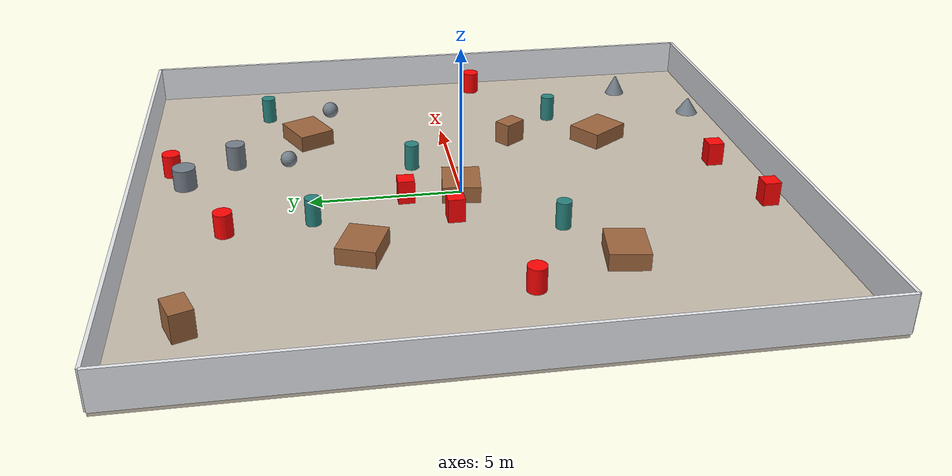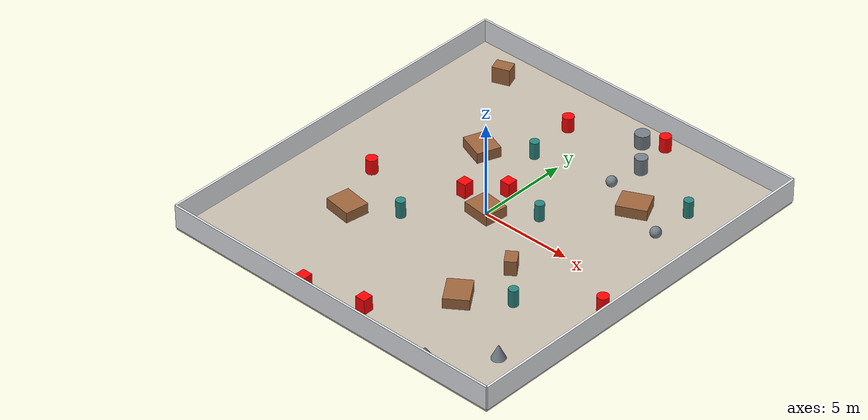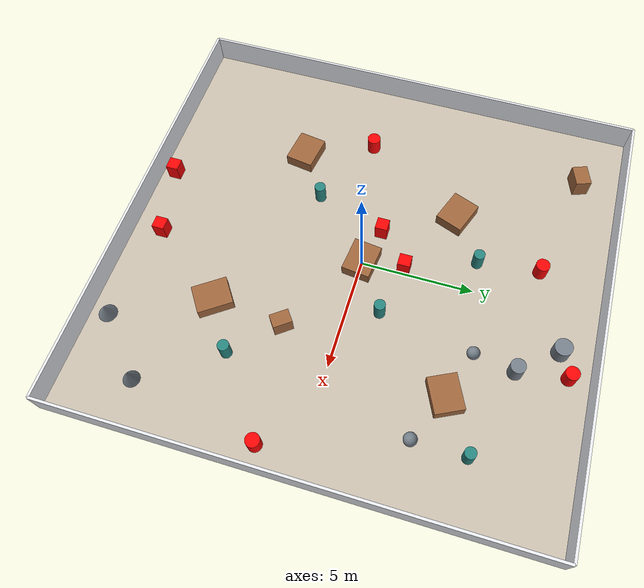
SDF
<?xml version='1.0' encoding='utf-8'?>
<sdf version="1.7">
  <world name="flat_3">
    <gravity>0 0 -9.8</gravity>
    <plugin name="gazebo_ros_state" filename="libgazebo_ros_state.so">
      <ros>
        <namespace>/gazebo</namespace>
      </ros>
    </plugin>
    <physics name="ode_physics" type="ode">
      <max_step_size>0.001</max_step_size>
      <real_time_factor>1</real_time_factor>
      <real_time_update_rate>1000</real_time_update_rate>
      <ode>
        <solver>
          <type>quick</type>
          <iters>150</iters>
          <sor>1.3</sor>
        </solver>
        <constraints>
          <cfm>0</cfm>
          <erp>0.2</erp>
          <contact_max_correcting_vel>0.2</contact_max_correcting_vel>
          <contact_surface_layer>0.001</contact_surface_layer>
        </constraints>
      </ode>
    </physics>
    <light name="sun" type="directional">
      <pose>0 0 28 0 0 0</pose>
      <diffuse>0.92 0.91 0.88 1</diffuse>
      <specular>0.18 0.18 0.16 1</specular>
      <direction>-0.35 -0.28 -0.9</direction>
      <cast_shadows>true</cast_shadows>
    </light>
    <light name="fill" type="point">
      <pose>0 0 6 0 0 0</pose>
      <diffuse>0.35 0.36 0.34 1</diffuse>
      <specular>0.02 0.02 0.02 1</specular>
      <cast_shadows>false</cast_shadows>
      <attenuation>
        <range>80</range>
        <constant>0.5</constant>
        <linear>0.02</linear>
      </attenuation>
    </light>
    <scene>
      <ambient>0.50 0.49 0.47 1</ambient>
      <background>0.80 0.82 0.86 1</background>
    </scene>
    <gui fullscreen="false">
      <camera name="user_camera">
        <pose>13.72 -18.9 17.85 0 0.65 2.2</pose>
        <view_controller>orbit</view_controller>
      </camera>
    </gui>
    <model name="flat_3_structure">
      <static>true</static>
      <link name="structure">
        <collision name="floor_collision">
          <pose>0 0 -0.07 0 0 0</pose>
          <geometry>
            <box>
              <size>19.6 21 0.14</size>
            </box>
          </geometry>
          <max_contacts>40</max_contacts>
          <surface>
            <friction>
              <ode>
                <mu>2</mu>
                <mu2>2</mu2>
              </ode>
            </friction>
            <contact>
              <ode>
                <kp>1e7</kp>
                <kd>1000</kd>
                <max_vel>0.1</max_vel>
                <min_depth>0.001</min_depth>
              </ode>
            </contact>
          </surface>
        </collision>
        <visual name="floor_visual">
          <pose>0 0 -0.07 0 0 0</pose>
          <geometry>
            <box>
              <size>19.6 21 0.14</size>
            </box>
          </geometry>
          <material>
            <ambient>0.78 0.74 0.68 1</ambient>
            <diffuse>0.78 0.74 0.68 1</diffuse>
          </material>
        </visual>
        <collision name="island_0_collision">
          <pose>-4.9 -4.2 0.28 0 0 -0.149702639</pose>
          <geometry>
            <box>
              <size>1.54 1.26 0.56</size>
            </box>
          </geometry>
          <max_contacts>40</max_contacts>
          <surface>
            <friction>
              <ode>
                <mu>2</mu>
                <mu2>2</mu2>
              </ode>
            </friction>
            <contact>
              <ode>
                <kp>1e7</kp>
                <kd>1000</kd>
                <max_vel>0.1</max_vel>
                <min_depth>0.001</min_depth>
              </ode>
            </contact>
          </surface>
        </collision>
        <visual name="island_0_visual">
          <pose>-4.9 -4.2 0.28 0 0 -0.149702639</pose>
          <geometry>
            <box>
              <size>1.54 1.26 0.56</size>
            </box>
          </geometry>
          <material>
            <ambient>0.62 0.40 0.24 1</ambient>
            <diffuse>0.62 0.40 0.24 1</diffuse>
          </material>
        </visual>
        <collision name="pillar_0_collision">
          <pose>-2.8 -2.8 0.455 0 0 0</pose>
          <geometry>
            <cylinder>
              <radius>0.24499999999999997</radius>
              <length>0.9099999999999999</length>
            </cylinder>
          </geometry>
          <max_contacts>40</max_contacts>
          <surface>
            <friction>
              <ode>
                <mu>2</mu>
                <mu2>2</mu2>
              </ode>
            </friction>
            <contact>
              <ode>
                <kp>1e7</kp>
                <kd>1000</kd>
                <max_vel>0.1</max_vel>
                <min_depth>0.001</min_depth>
              </ode>
            </contact>
          </surface>
        </collision>
        <visual name="pillar_0_visual">
          <pose>-2.8 -2.8 0.455 0 0 0</pose>
          <geometry>
            <cylinder>
              <radius>0.24499999999999997</radius>
              <length>0.9099999999999999</length>
            </cylinder>
          </geometry>
          <material>
            <ambient>0.16 0.52 0.50 1</ambient>
            <diffuse>0.16 0.52 0.50 1</diffuse>
          </material>
        </visual>
        <collision name="island_1_collision">
          <pose>3.5 -5.6 0.28 0 0 -0.953734679</pose>
          <geometry>
            <box>
              <size>1.54 1.26 0.56</size>
            </box>
          </geometry>
          <max_contacts>40</max_contacts>
          <surface>
            <friction>
              <ode>
                <mu>2</mu>
                <mu2>2</mu2>
              </ode>
            </friction>
            <contact>
              <ode>
                <kp>1e7</kp>
                <kd>1000</kd>
                <max_vel>0.1</max_vel>
                <min_depth>0.001</min_depth>
              </ode>
            </contact>
          </surface>
        </collision>
        <visual name="island_1_visual">
          <pose>3.5 -5.6 0.28 0 0 -0.953734679</pose>
          <geometry>
            <box>
              <size>1.54 1.26 0.56</size>
            </box>
          </geometry>
          <material>
            <ambient>0.62 0.40 0.24 1</ambient>
            <diffuse>0.62 0.40 0.24 1</diffuse>
          </material>
        </visual>
        <collision name="pillar_1_collision">
          <pose>5.6 -4.2 0.455 0 0 0</pose>
          <geometry>
            <cylinder>
              <radius>0.24499999999999997</radius>
              <length>0.9099999999999999</length>
            </cylinder>
          </geometry>
          <max_contacts>40</max_contacts>
          <surface>
            <friction>
              <ode>
                <mu>2</mu>
                <mu2>2</mu2>
              </ode>
            </friction>
            <contact>
              <ode>
                <kp>1e7</kp>
                <kd>1000</kd>
                <max_vel>0.1</max_vel>
                <min_depth>0.001</min_depth>
              </ode>
            </contact>
          </surface>
        </collision>
        <visual name="pillar_1_visual">
          <pose>5.6 -4.2 0.455 0 0 0</pose>
          <geometry>
            <cylinder>
              <radius>0.24499999999999997</radius>
              <length>0.9099999999999999</length>
            </cylinder>
          </geometry>
          <material>
            <ambient>0.16 0.52 0.50 1</ambient>
            <diffuse>0.16 0.52 0.50 1</diffuse>
          </material>
        </visual>
        <collision name="island_2_collision">
          <pose>-3.5 3.5 0.28 0 0 -0.358803244</pose>
          <geometry>
            <box>
              <size>1.54 1.26 0.56</size>
            </box>
          </geometry>
          <max_contacts>40</max_contacts>
          <surface>
            <friction>
              <ode>
                <mu>2</mu>
                <mu2>2</mu2>
              </ode>
            </friction>
            <contact>
              <ode>
                <kp>1e7</kp>
                <kd>1000</kd>
                <max_vel>0.1</max_vel>
                <min_depth>0.001</min_depth>
              </ode>
            </contact>
          </surface>
        </collision>
        <visual name="island_2_visual">
          <pose>-3.5 3.5 0.28 0 0 -0.358803244</pose>
          <geometry>
            <box>
              <size>1.54 1.26 0.56</size>
            </box>
          </geometry>
          <material>
            <ambient>0.62 0.40 0.24 1</ambient>
            <diffuse>0.62 0.40 0.24 1</diffuse>
          </material>
        </visual>
        <collision name="pillar_2_collision">
          <pose>-1.4 4.9 0.455 0 0 0</pose>
          <geometry>
            <cylinder>
              <radius>0.24499999999999997</radius>
              <length>0.9099999999999999</length>
            </cylinder>
          </geometry>
          <max_contacts>40</max_contacts>
          <surface>
            <friction>
              <ode>
                <mu>2</mu>
                <mu2>2</mu2>
              </ode>
            </friction>
            <contact>
              <ode>
                <kp>1e7</kp>
                <kd>1000</kd>
                <max_vel>0.1</max_vel>
                <min_depth>0.001</min_depth>
              </ode>
            </contact>
          </surface>
        </collision>
        <visual name="pillar_2_visual">
          <pose>-1.4 4.9 0.455 0 0 0</pose>
          <geometry>
            <cylinder>
              <radius>0.24499999999999997</radius>
              <length>0.9099999999999999</length>
            </cylinder>
          </geometry>
          <material>
            <ambient>0.16 0.52 0.50 1</ambient>
            <diffuse>0.16 0.52 0.50 1</diffuse>
          </material>
        </visual>
        <collision name="island_3_collision">
          <pose>4.9 4.9 0.28 0 0 0.45155778</pose>
          <geometry>
            <box>
              <size>1.54 1.26 0.56</size>
            </box>
          </geometry>
          <max_contacts>40</max_contacts>
          <surface>
            <friction>
              <ode>
                <mu>2</mu>
                <mu2>2</mu2>
              </ode>
            </friction>
            <contact>
              <ode>
                <kp>1e7</kp>
                <kd>1000</kd>
                <max_vel>0.1</max_vel>
                <min_depth>0.001</min_depth>
              </ode>
            </contact>
          </surface>
        </collision>
        <visual name="island_3_visual">
          <pose>4.9 4.9 0.28 0 0 0.45155778</pose>
          <geometry>
            <box>
              <size>1.54 1.26 0.56</size>
            </box>
          </geometry>
          <material>
            <ambient>0.62 0.40 0.24 1</ambient>
            <diffuse>0.62 0.40 0.24 1</diffuse>
          </material>
        </visual>
        <collision name="pillar_3_collision">
          <pose>7 6.3 0.455 0 0 0</pose>
          <geometry>
            <cylinder>
              <radius>0.24499999999999997</radius>
              <length>0.9099999999999999</length>
            </cylinder>
          </geometry>
          <max_contacts>40</max_contacts>
          <surface>
            <friction>
              <ode>
                <mu>2</mu>
                <mu2>2</mu2>
              </ode>
            </friction>
            <contact>
              <ode>
                <kp>1e7</kp>
                <kd>1000</kd>
                <max_vel>0.1</max_vel>
                <min_depth>0.001</min_depth>
              </ode>
            </contact>
          </surface>
        </collision>
        <visual name="pillar_3_visual">
          <pose>7 6.3 0.455 0 0 0</pose>
          <geometry>
            <cylinder>
              <radius>0.24499999999999997</radius>
              <length>0.9099999999999999</length>
            </cylinder>
          </geometry>
          <material>
            <ambient>0.16 0.52 0.50 1</ambient>
            <diffuse>0.16 0.52 0.50 1</diffuse>
          </material>
        </visual>
        <collision name="island_4_collision">
          <pose>0 0 0.28 0 0 -0.116692932</pose>
          <geometry>
            <box>
              <size>1.54 1.26 0.56</size>
            </box>
          </geometry>
          <max_contacts>40</max_contacts>
          <surface>
            <friction>
              <ode>
                <mu>2</mu>
                <mu2>2</mu2>
              </ode>
            </friction>
            <contact>
              <ode>
                <kp>1e7</kp>
                <kd>1000</kd>
                <max_vel>0.1</max_vel>
                <min_depth>0.001</min_depth>
              </ode>
            </contact>
          </surface>
        </collision>
        <visual name="island_4_visual">
          <pose>0 0 0.28 0 0 -0.116692932</pose>
          <geometry>
            <box>
              <size>1.54 1.26 0.56</size>
            </box>
          </geometry>
          <material>
            <ambient>0.62 0.40 0.24 1</ambient>
            <diffuse>0.62 0.40 0.24 1</diffuse>
          </material>
        </visual>
        <collision name="pillar_4_collision">
          <pose>2.1 1.4 0.455 0 0 0</pose>
          <geometry>
            <cylinder>
              <radius>0.24499999999999997</radius>
              <length>0.9099999999999999</length>
            </cylinder>
          </geometry>
          <max_contacts>40</max_contacts>
          <surface>
            <friction>
              <ode>
                <mu>2</mu>
                <mu2>2</mu2>
              </ode>
            </friction>
            <contact>
              <ode>
                <kp>1e7</kp>
                <kd>1000</kd>
                <max_vel>0.1</max_vel>
                <min_depth>0.001</min_depth>
              </ode>
            </contact>
          </surface>
        </collision>
        <visual name="pillar_4_visual">
          <pose>2.1 1.4 0.455 0 0 0</pose>
          <geometry>
            <cylinder>
              <radius>0.24499999999999997</radius>
              <length>0.9099999999999999</length>
            </cylinder>
          </geometry>
          <material>
            <ambient>0.16 0.52 0.50 1</ambient>
            <diffuse>0.16 0.52 0.50 1</diffuse>
          </material>
        </visual>
        <collision name="boundary_0_collision">
          <pose>0 -10.5 0.63 0 0 0</pose>
          <geometry>
            <box>
              <size>19.6 0.112 1.26</size>
            </box>
          </geometry>
          <max_contacts>40</max_contacts>
          <surface>
            <friction>
              <ode>
                <mu>2</mu>
                <mu2>2</mu2>
              </ode>
            </friction>
            <contact>
              <ode>
                <kp>1e7</kp>
                <kd>1000</kd>
                <max_vel>0.1</max_vel>
                <min_depth>0.001</min_depth>
              </ode>
            </contact>
          </surface>
        </collision>
        <visual name="boundary_0_visual">
          <pose>0 -10.5 0.63 0 0 0</pose>
          <geometry>
            <box>
              <size>19.6 0.112 1.26</size>
            </box>
          </geometry>
          <material>
            <ambient>0.90 0.91 0.93 1</ambient>
            <diffuse>0.90 0.91 0.93 1</diffuse>
          </material>
        </visual>
        <collision name="boundary_1_collision">
          <pose>9.8 0 0.63 0 0 1.57079633</pose>
          <geometry>
            <box>
              <size>21 0.112 1.26</size>
            </box>
          </geometry>
          <max_contacts>40</max_contacts>
          <surface>
            <friction>
              <ode>
                <mu>2</mu>
                <mu2>2</mu2>
              </ode>
            </friction>
            <contact>
              <ode>
                <kp>1e7</kp>
                <kd>1000</kd>
                <max_vel>0.1</max_vel>
                <min_depth>0.001</min_depth>
              </ode>
            </contact>
          </surface>
        </collision>
        <visual name="boundary_1_visual">
          <pose>9.8 0 0.63 0 0 1.57079633</pose>
          <geometry>
            <box>
              <size>21 0.112 1.26</size>
            </box>
          </geometry>
          <material>
            <ambient>0.90 0.91 0.93 1</ambient>
            <diffuse>0.90 0.91 0.93 1</diffuse>
          </material>
        </visual>
        <collision name="boundary_2_collision">
          <pose>0 10.5 0.63 0 0 3.14159265</pose>
          <geometry>
            <box>
              <size>19.6 0.112 1.26</size>
            </box>
          </geometry>
          <max_contacts>40</max_contacts>
          <surface>
            <friction>
              <ode>
                <mu>2</mu>
                <mu2>2</mu2>
              </ode>
            </friction>
            <contact>
              <ode>
                <kp>1e7</kp>
                <kd>1000</kd>
                <max_vel>0.1</max_vel>
                <min_depth>0.001</min_depth>
              </ode>
            </contact>
          </surface>
        </collision>
        <visual name="boundary_2_visual">
          <pose>0 10.5 0.63 0 0 3.14159265</pose>
          <geometry>
            <box>
              <size>19.6 0.112 1.26</size>
            </box>
          </geometry>
          <material>
            <ambient>0.90 0.91 0.93 1</ambient>
            <diffuse>0.90 0.91 0.93 1</diffuse>
          </material>
        </visual>
        <collision name="boundary_3_collision">
          <pose>-9.8 0 0.63 0 0 -1.57079633</pose>
          <geometry>
            <box>
              <size>21 0.112 1.26</size>
            </box>
          </geometry>
          <max_contacts>40</max_contacts>
          <surface>
            <friction>
              <ode>
                <mu>2</mu>
                <mu2>2</mu2>
              </ode>
            </friction>
            <contact>
              <ode>
                <kp>1e7</kp>
                <kd>1000</kd>
                <max_vel>0.1</max_vel>
                <min_depth>0.001</min_depth>
              </ode>
            </contact>
          </surface>
        </collision>
        <visual name="boundary_3_visual">
          <pose>-9.8 0 0.63 0 0 -1.57079633</pose>
          <geometry>
            <box>
              <size>21 0.112 1.26</size>
            </box>
          </geometry>
          <material>
            <ambient>0.90 0.91 0.93 1</ambient>
            <diffuse>0.90 0.91 0.93 1</diffuse>
          </material>
        </visual>
        <collision name="irregular_prop_0_collision">
          <pose>-6.80372906 8.57246337 0.44535008 0 0 -2.78455633</pose>
          <geometry>
            <box>
              <size>0.943386883 0.690038253 0.89070016</size>
            </box>
          </geometry>
          <max_contacts>40</max_contacts>
          <surface>
            <friction>
              <ode>
                <mu>2</mu>
                <mu2>2</mu2>
              </ode>
            </friction>
            <contact>
              <ode>
                <kp>1e7</kp>
                <kd>1000</kd>
                <max_vel>0.1</max_vel>
                <min_depth>0.001</min_depth>
              </ode>
            </contact>
          </surface>
        </collision>
        <visual name="irregular_prop_0_visual">
          <pose>-6.80372906 8.57246337 0.44535008 0 0 -2.78455633</pose>
          <geometry>
            <box>
              <size>0.943386883 0.690038253 0.89070016</size>
            </box>
          </geometry>
          <material>
            <ambient>0.62 0.40 0.24 1</ambient>
            <diffuse>0.62 0.40 0.24 1</diffuse>
          </material>
        </visual>
        <collision name="irregular_prop_1_collision">
          <pose>3.10218966 7.4125665 0.431506304 0 0 1.38669848</pose>
          <geometry>
            <cylinder>
              <radius>0.32381070840701787</radius>
              <length>0.8630126085578458</length>
            </cylinder>
          </geometry>
          <max_contacts>40</max_contacts>
          <surface>
            <friction>
              <ode>
                <mu>2</mu>
                <mu2>2</mu2>
              </ode>
            </friction>
            <contact>
              <ode>
                <kp>1e7</kp>
                <kd>1000</kd>
                <max_vel>0.1</max_vel>
                <min_depth>0.001</min_depth>
              </ode>
            </contact>
          </surface>
        </collision>
        <visual name="irregular_prop_1_visual">
          <pose>3.10218966 7.4125665 0.431506304 0 0 1.38669848</pose>
          <geometry>
            <cylinder>
              <radius>0.32381070840701787</radius>
              <length>0.8630126085578458</length>
            </cylinder>
          </geometry>
          <material>
            <ambient>0.46 0.50 0.54 1</ambient>
            <diffuse>0.46 0.50 0.54 1</diffuse>
          </material>
        </visual>
        <collision name="irregular_prop_2_collision">
          <pose>2.844426 5.61179232 0.280818935 0 0 1.35161169</pose>
          <geometry>
            <sphere>
              <radius>0.28081893451606255</radius>
            </sphere>
          </geometry>
          <max_contacts>40</max_contacts>
          <surface>
            <friction>
              <ode>
                <mu>2</mu>
                <mu2>2</mu2>
              </ode>
            </friction>
            <contact>
              <ode>
                <kp>1e7</kp>
                <kd>1000</kd>
                <max_vel>0.1</max_vel>
                <min_depth>0.001</min_depth>
              </ode>
            </contact>
          </surface>
        </collision>
        <visual name="irregular_prop_2_visual">
          <pose>2.844426 5.61179232 0.280818935 0 0 1.35161169</pose>
          <geometry>
            <sphere>
              <radius>0.28081893451606255</radius>
            </sphere>
          </geometry>
          <material>
            <ambient>0.46 0.50 0.54 1</ambient>
            <diffuse>0.46 0.50 0.54 1</diffuse>
          </material>
        </visual>
        <collision name="irregular_prop_3_collision">
          <pose>0 0 0 0 0 0</pose>
          <geometry>
            <mesh>
              <uri>3DModel/flat/surfaces/flat_3_irregular_prop_3.stl</uri>
            </mesh>
          </geometry>
          <max_contacts>40</max_contacts>
          <surface>
            <friction>
              <ode>
                <mu>8</mu>
                <mu2>8</mu2>
              </ode>
            </friction>
            <contact>
              <ode>
                <kp>1e7</kp>
                <kd>1000</kd>
                <max_vel>0.1</max_vel>
                <min_depth>0.001</min_depth>
              </ode>
            </contact>
          </surface>
        </collision>
        <visual name="irregular_prop_3_visual">
          <pose>0 0 0 0 0 0</pose>
          <geometry>
            <mesh>
              <uri>3DModel/flat/surfaces/flat_3_irregular_prop_3.stl</uri>
            </mesh>
          </geometry>
          <material>
            <ambient>0.46 0.50 0.54 1</ambient>
            <diffuse>0.46 0.50 0.54 1</diffuse>
          </material>
        </visual>
        <collision name="irregular_prop_4_collision">
          <pose>3.79764399 -2.3856121 0.397355265 0 0 0.637602176</pose>
          <geometry>
            <box>
              <size>0.609886133 0.835976622 0.79471053</size>
            </box>
          </geometry>
          <max_contacts>40</max_contacts>
          <surface>
            <friction>
              <ode>
                <mu>2</mu>
                <mu2>2</mu2>
              </ode>
            </friction>
            <contact>
              <ode>
                <kp>1e7</kp>
                <kd>1000</kd>
                <max_vel>0.1</max_vel>
                <min_depth>0.001</min_depth>
              </ode>
            </contact>
          </surface>
        </collision>
        <visual name="irregular_prop_4_visual">
          <pose>3.79764399 -2.3856121 0.397355265 0 0 0.637602176</pose>
          <geometry>
            <box>
              <size>0.609886133 0.835976622 0.79471053</size>
            </box>
          </geometry>
          <material>
            <ambient>0.62 0.40 0.24 1</ambient>
            <diffuse>0.62 0.40 0.24 1</diffuse>
          </material>
        </visual>
        <collision name="irregular_prop_5_collision">
          <pose>1.74483829 9.05705145 0.372942392 0 0 1.02319318</pose>
          <geometry>
            <cylinder>
              <radius>0.3823854550901823</radius>
              <length>0.7458847836952237</length>
            </cylinder>
          </geometry>
          <max_contacts>40</max_contacts>
          <surface>
            <friction>
              <ode>
                <mu>2</mu>
                <mu2>2</mu2>
              </ode>
            </friction>
            <contact>
              <ode>
                <kp>1e7</kp>
                <kd>1000</kd>
                <max_vel>0.1</max_vel>
                <min_depth>0.001</min_depth>
              </ode>
            </contact>
          </surface>
        </collision>
        <visual name="irregular_prop_5_visual">
          <pose>1.74483829 9.05705145 0.372942392 0 0 1.02319318</pose>
          <geometry>
            <cylinder>
              <radius>0.3823854550901823</radius>
              <length>0.7458847836952237</length>
            </cylinder>
          </geometry>
          <material>
            <ambient>0.46 0.50 0.54 1</ambient>
            <diffuse>0.46 0.50 0.54 1</diffuse>
          </material>
        </visual>
        <collision name="irregular_prop_6_collision">
          <pose>6.98875408 3.9960557 0.290963714 0 0 -3.01983294</pose>
          <geometry>
            <sphere>
              <radius>0.2909637140978648</radius>
            </sphere>
          </geometry>
          <max_contacts>40</max_contacts>
          <surface>
            <friction>
              <ode>
                <mu>2</mu>
                <mu2>2</mu2>
              </ode>
            </friction>
            <contact>
              <ode>
                <kp>1e7</kp>
                <kd>1000</kd>
                <max_vel>0.1</max_vel>
                <min_depth>0.001</min_depth>
              </ode>
            </contact>
          </surface>
        </collision>
        <visual name="irregular_prop_6_visual">
          <pose>6.98875408 3.9960557 0.290963714 0 0 -3.01983294</pose>
          <geometry>
            <sphere>
              <radius>0.2909637140978648</radius>
            </sphere>
          </geometry>
          <material>
            <ambient>0.46 0.50 0.54 1</ambient>
            <diffuse>0.46 0.50 0.54 1</diffuse>
          </material>
        </visual>
        <collision name="irregular_prop_7_collision">
          <pose>0 0 0 0 0 0</pose>
          <geometry>
            <mesh>
              <uri>3DModel/flat/surfaces/flat_3_irregular_prop_7.stl</uri>
            </mesh>
          </geometry>
          <max_contacts>40</max_contacts>
          <surface>
            <friction>
              <ode>
                <mu>8</mu>
                <mu2>8</mu2>
              </ode>
            </friction>
            <contact>
              <ode>
                <kp>1e7</kp>
                <kd>1000</kd>
                <max_vel>0.1</max_vel>
                <min_depth>0.001</min_depth>
              </ode>
            </contact>
          </surface>
        </collision>
        <visual name="irregular_prop_7_visual">
          <pose>0 0 0 0 0 0</pose>
          <geometry>
            <mesh>
              <uri>3DModel/flat/surfaces/flat_3_irregular_prop_7.stl</uri>
            </mesh>
          </geometry>
          <material>
            <ambient>0.46 0.50 0.54 1</ambient>
            <diffuse>0.46 0.50 0.54 1</diffuse>
          </material>
        </visual>
      </link>
    </model>
    <model name="moving_obstacle_1">
      <static>true</static>
      <pose>-2.19524026 -9.78294218 0.4 0 0 0</pose>
      <link name="obstacle">
        <collision name="body_collision">
          <pose>0 0 0 0 0 0</pose>
          <geometry>
            <box>
              <size>0.55 0.55 0.8</size>
            </box>
          </geometry>
          <max_contacts>40</max_contacts>
          <surface>
            <friction>
              <ode>
                <mu>2</mu>
                <mu2>2</mu2>
              </ode>
            </friction>
            <contact>
              <ode>
                <kp>1e7</kp>
                <kd>1000</kd>
                <max_vel>0.1</max_vel>
                <min_depth>0.001</min_depth>
              </ode>
            </contact>
          </surface>
        </collision>
        <visual name="body_visual">
          <pose>0 0 0 0 0 0</pose>
          <geometry>
            <box>
              <size>0.55 0.55 0.8</size>
            </box>
          </geometry>
          <material>
            <ambient>1 0.015 0.015 1</ambient>
            <diffuse>1 0.015 0.015 1</diffuse>
            <emissive>0.25 0 0 1</emissive>
          </material>
        </visual>
      </link>
      <plugin name="path_motion" filename="libmultimap_obstacle_motion.so">
        <speed>0.25</speed>
        <start_delay>0.0</start_delay>
        <waypoints>
          <point>-2.19524026 -9.78294218 0.4</point>
          <point>-2.20457922 -9.70220076 0.4</point>
          <point>-2.21391818 -9.62145934 0.4</point>
          <point>-2.22325714 -9.54071792 0.4</point>
          <point>-2.2325961 -9.4599765 0.4</point>
          <point>-2.24193506 -9.37923508 0.4</point>
          <point>-2.25127401 -9.29849366 0.4</point>
          <point>-2.26061297 -9.21775224 0.4</point>
          <point>-2.26995193 -9.13701082 0.4</point>
          <point>-2.27929089 -9.0562694 0.4</point>
          <point>-2.28862985 -8.97552797 0.4</point>
          <point>-2.29796881 -8.89478655 0.4</point>
          <point>-2.30730777 -8.81404513 0.4</point>
          <point>-2.31664673 -8.73330371 0.4</point>
          <point>-2.32598569 -8.65256229 0.4</point>
          <point>-2.33532464 -8.57182087 0.4</point>
          <point>-2.3446636 -8.49107945 0.4</point>
          <point>-2.35400256 -8.41033803 0.4</point>
          <point>-2.36334152 -8.32959661 0.4</point>
          <point>-2.37268048 -8.24885519 0.4</point>
          <point>-2.38201944 -8.16811376 0.4</point>
          <point>-2.3913584 -8.08737234 0.4</point>
          <point>-2.40069736 -8.00663092 0.4</point>
          <point>-2.41003631 -7.9258895 0.4</point>
          <point>-2.41937527 -7.84514808 0.4</point>
          <point>-2.42871423 -7.76440666 0.4</point>
          <point>-2.43805319 -7.68366524 0.4</point>
          <point>-2.44739215 -7.60292382 0.4</point>
          <point>-2.45673111 -7.5221824 0.4</point>
          <point>-2.46607007 -7.44144098 0.4</point>
          <point>-2.47540903 -7.36069955 0.4</point>
          <point>-2.48474799 -7.27995813 0.4</point>
          <point>-2.49408694 -7.19921671 0.4</point>
          <point>-2.5034259 -7.11847529 0.4</point>
          <point>-2.51276486 -7.03773387 0.4</point>
          <point>-2.52210382 -6.95699245 0.4</point>
          <point>-2.53144278 -6.87625103 0.4</point>
          <point>-2.54078174 -6.79550961 0.4</point>
          <point>-2.5501207 -6.71476819 0.4</point>
          <point>-2.55945966 -6.63402677 0.4</point>
        </waypoints>
      </plugin>
    </model>
    <model name="moving_obstacle_2">
      <static>true</static>
      <pose>-6.21881343 -1.20008772 0.4 0 0 0</pose>
      <link name="obstacle">
        <collision name="body_collision">
          <pose>0 0 0 0 0 0</pose>
          <geometry>
            <cylinder>
              <radius>0.3</radius>
              <length>0.8</length>
            </cylinder>
          </geometry>
          <max_contacts>40</max_contacts>
          <surface>
            <friction>
              <ode>
                <mu>2</mu>
                <mu2>2</mu2>
              </ode>
            </friction>
            <contact>
              <ode>
                <kp>1e7</kp>
                <kd>1000</kd>
                <max_vel>0.1</max_vel>
                <min_depth>0.001</min_depth>
              </ode>
            </contact>
          </surface>
        </collision>
        <visual name="body_visual">
          <pose>0 0 0 0 0 0</pose>
          <geometry>
            <cylinder>
              <radius>0.3</radius>
              <length>0.8</length>
            </cylinder>
          </geometry>
          <material>
            <ambient>1 0.015 0.015 1</ambient>
            <diffuse>1 0.015 0.015 1</diffuse>
            <emissive>0.25 0 0 1</emissive>
          </material>
        </visual>
      </link>
      <plugin name="path_motion" filename="libmultimap_obstacle_motion.so">
        <speed>0.65</speed>
        <start_delay>0.25</start_delay>
        <waypoints>
          <point>-6.21881343 -1.20008772 0.4</point>
          <point>-6.15239566 -1.25038516 0.4</point>
          <point>-6.08597789 -1.3006826 0.4</point>
          <point>-6.01956013 -1.35098005 0.4</point>
          <point>-5.95314236 -1.40127749 0.4</point>
          <point>-5.88672459 -1.45157493 0.4</point>
          <point>-5.82030683 -1.50187237 0.4</point>
          <point>-5.75388906 -1.55216982 0.4</point>
          <point>-5.68747129 -1.60246726 0.4</point>
          <point>-5.62105352 -1.6527647 0.4</point>
          <point>-5.55463576 -1.70306215 0.4</point>
          <point>-5.48821799 -1.75335959 0.4</point>
          <point>-5.42180022 -1.80365703 0.4</point>
          <point>-5.35538246 -1.85395447 0.4</point>
          <point>-5.28896469 -1.90425192 0.4</point>
          <point>-5.22254692 -1.95454936 0.4</point>
          <point>-5.15612915 -2.0048468 0.4</point>
          <point>-5.08971139 -2.05514425 0.4</point>
          <point>-5.02329362 -2.10544169 0.4</point>
          <point>-4.95687585 -2.15573913 0.4</point>
          <point>-4.89045808 -2.20603658 0.4</point>
          <point>-4.82404032 -2.25633402 0.4</point>
          <point>-4.75762255 -2.30663146 0.4</point>
          <point>-4.69120478 -2.3569289 0.4</point>
          <point>-4.62478702 -2.40722635 0.4</point>
          <point>-4.55836925 -2.45752379 0.4</point>
          <point>-4.49195148 -2.50782123 0.4</point>
          <point>-4.42553371 -2.55811868 0.4</point>
          <point>-4.35911595 -2.60841612 0.4</point>
          <point>-4.29269818 -2.65871356 0.4</point>
          <point>-4.22628041 -2.70901101 0.4</point>
          <point>-4.15986265 -2.75930845 0.4</point>
          <point>-4.09344488 -2.80960589 0.4</point>
          <point>-4.02702711 -2.85990333 0.4</point>
          <point>-3.96060934 -2.91020078 0.4</point>
          <point>-3.89419158 -2.96049822 0.4</point>
          <point>-3.82777381 -3.01079566 0.4</point>
          <point>-3.76135604 -3.06109311 0.4</point>
          <point>-3.69493827 -3.11139055 0.4</point>
          <point>-3.62852051 -3.16168799 0.4</point>
        </waypoints>
      </plugin>
    </model>
    <model name="moving_obstacle_3">
      <static>true</static>
      <pose>-1.75984902 0.441789993 0.4 0 0 0</pose>
      <link name="obstacle">
        <collision name="body_collision">
          <pose>0 0 0 0 0 0</pose>
          <geometry>
            <box>
              <size>0.55 0.55 0.8</size>
            </box>
          </geometry>
          <max_contacts>40</max_contacts>
          <surface>
            <friction>
              <ode>
                <mu>2</mu>
                <mu2>2</mu2>
              </ode>
            </friction>
            <contact>
              <ode>
                <kp>1e7</kp>
                <kd>1000</kd>
                <max_vel>0.1</max_vel>
                <min_depth>0.001</min_depth>
              </ode>
            </contact>
          </surface>
        </collision>
        <visual name="body_visual">
          <pose>0 0 0 0 0 0</pose>
          <geometry>
            <box>
              <size>0.55 0.55 0.8</size>
            </box>
          </geometry>
          <material>
            <ambient>1 0.015 0.015 1</ambient>
            <diffuse>1 0.015 0.015 1</diffuse>
            <emissive>0.25 0 0 1</emissive>
          </material>
        </visual>
      </link>
      <plugin name="path_motion" filename="libmultimap_obstacle_motion.so">
        <speed>0.4</speed>
        <start_delay>0.5</start_delay>
        <waypoints>
          <point>-1.75984902 0.441789993 0.4</point>
          <point>-1.88703289 0.465505098 0.4</point>
          <point>-2.01421677 0.489220204 0.4</point>
          <point>-2.14140064 0.51293531 0.4</point>
          <point>-2.26858451 0.536650416 0.4</point>
          <point>-2.39576839 0.560365521 0.4</point>
          <point>-2.52295226 0.584080627 0.4</point>
          <point>-2.65013613 0.607795733 0.4</point>
          <point>-2.77732001 0.631510839 0.4</point>
          <point>-2.90450388 0.655225944 0.4</point>
          <point>-3.03168775 0.67894105 0.4</point>
          <point>-3.15887163 0.702656156 0.4</point>
          <point>-3.2860555 0.726371262 0.4</point>
          <point>-3.41323938 0.750086368 0.4</point>
          <point>-3.54042325 0.773801473 0.4</point>
          <point>-3.66760712 0.797516579 0.4</point>
          <point>-3.794791 0.821231685 0.4</point>
          <point>-3.92197487 0.844946791 0.4</point>
          <point>-4.04915874 0.868661896 0.4</point>
          <point>-4.17634262 0.892377002 0.4</point>
          <point>-4.30352649 0.916092108 0.4</point>
          <point>-4.43071036 0.939807214 0.4</point>
          <point>-4.55789424 0.963522319 0.4</point>
          <point>-4.68507811 0.987237425 0.4</point>
          <point>-4.81226199 1.01095253 0.4</point>
          <point>-4.93944586 1.03466764 0.4</point>
          <point>-5.06662973 1.05838274 0.4</point>
          <point>-5.19381361 1.08209785 0.4</point>
          <point>-5.32099748 1.10581295 0.4</point>
          <point>-5.44818135 1.12952806 0.4</point>
          <point>-5.57536523 1.15324317 0.4</point>
          <point>-5.7025491 1.17695827 0.4</point>
          <point>-5.82973297 1.20067338 0.4</point>
          <point>-5.95691685 1.22438848 0.4</point>
          <point>-6.08410072 1.24810359 0.4</point>
          <point>-6.2112846 1.27181869 0.4</point>
          <point>-6.33846847 1.2955338 0.4</point>
          <point>-6.46565234 1.31924891 0.4</point>
          <point>-6.59283622 1.34296401 0.4</point>
          <point>-6.72002009 1.36667912 0.4</point>
        </waypoints>
      </plugin>
    </model>
    <model name="moving_obstacle_4">
      <static>true</static>
      <pose>-1.71559611 7.63671736 0.4 0 0 0</pose>
      <link name="obstacle">
        <collision name="body_collision">
          <pose>0 0 0 0 0 0</pose>
          <geometry>
            <cylinder>
              <radius>0.3</radius>
              <length>0.8</length>
            </cylinder>
          </geometry>
          <max_contacts>40</max_contacts>
          <surface>
            <friction>
              <ode>
                <mu>2</mu>
                <mu2>2</mu2>
              </ode>
            </friction>
            <contact>
              <ode>
                <kp>1e7</kp>
                <kd>1000</kd>
                <max_vel>0.1</max_vel>
                <min_depth>0.001</min_depth>
              </ode>
            </contact>
          </surface>
        </collision>
        <visual name="body_visual">
          <pose>0 0 0 0 0 0</pose>
          <geometry>
            <cylinder>
              <radius>0.3</radius>
              <length>0.8</length>
            </cylinder>
          </geometry>
          <material>
            <ambient>1 0.015 0.015 1</ambient>
            <diffuse>1 0.015 0.015 1</diffuse>
            <emissive>0.25 0 0 1</emissive>
          </material>
        </visual>
      </link>
      <plugin name="path_motion" filename="libmultimap_obstacle_motion.so">
        <speed>0.95</speed>
        <start_delay>0.75</start_delay>
        <waypoints>
          <point>-1.71559611 7.63671736 0.4</point>
          <point>-1.78625343 7.58312875 0.4</point>
          <point>-1.85691076 7.52954014 0.4</point>
          <point>-1.92756808 7.47595153 0.4</point>
          <point>-1.99822541 7.42236292 0.4</point>
          <point>-2.06888273 7.36877431 0.4</point>
          <point>-2.13954006 7.3151857 0.4</point>
          <point>-2.21019739 7.26159709 0.4</point>
          <point>-2.28085471 7.20800848 0.4</point>
          <point>-2.35151204 7.15441987 0.4</point>
          <point>-2.42216936 7.10083126 0.4</point>
          <point>-2.49282669 7.04724265 0.4</point>
          <point>-2.56348401 6.99365404 0.4</point>
          <point>-2.63414134 6.94006543 0.4</point>
          <point>-2.70479867 6.88647683 0.4</point>
          <point>-2.77545599 6.83288822 0.4</point>
          <point>-2.84611332 6.77929961 0.4</point>
          <point>-2.91677064 6.725711 0.4</point>
          <point>-2.98742797 6.67212239 0.4</point>
          <point>-3.0580853 6.61853378 0.4</point>
          <point>-3.12874262 6.56494517 0.4</point>
          <point>-3.19939995 6.51135656 0.4</point>
          <point>-3.27005727 6.45776795 0.4</point>
          <point>-3.3407146 6.40417934 0.4</point>
          <point>-3.41137192 6.35059073 0.4</point>
          <point>-3.48202925 6.29700212 0.4</point>
          <point>-3.55268658 6.24341351 0.4</point>
          <point>-3.6233439 6.18982491 0.4</point>
          <point>-3.69400123 6.1362363 0.4</point>
          <point>-3.76465855 6.08264769 0.4</point>
          <point>-3.83531588 6.02905908 0.4</point>
          <point>-3.9059732 5.97547047 0.4</point>
          <point>-3.97663053 5.92188186 0.4</point>
          <point>-4.04728786 5.86829325 0.4</point>
          <point>-4.11794518 5.81470464 0.4</point>
          <point>-4.18860251 5.76111603 0.4</point>
          <point>-4.25925983 5.70752742 0.4</point>
          <point>-4.32991716 5.65393881 0.4</point>
          <point>-4.40057448 5.6003502 0.4</point>
          <point>-4.47123181 5.54676159 0.4</point>
        </waypoints>
      </plugin>
    </model>
    <model name="moving_obstacle_5">
      <static>true</static>
      <pose>0.944814938 -9.08041291 0.4 0 0 0</pose>
      <link name="obstacle">
        <collision name="body_collision">
          <pose>0 0 0 0 0 0</pose>
          <geometry>
            <box>
              <size>0.55 0.55 0.8</size>
            </box>
          </geometry>
          <max_contacts>40</max_contacts>
          <surface>
            <friction>
              <ode>
                <mu>2</mu>
                <mu2>2</mu2>
              </ode>
            </friction>
            <contact>
              <ode>
                <kp>1e7</kp>
                <kd>1000</kd>
                <max_vel>0.1</max_vel>
                <min_depth>0.001</min_depth>
              </ode>
            </contact>
          </surface>
        </collision>
        <visual name="body_visual">
          <pose>0 0 0 0 0 0</pose>
          <geometry>
            <box>
              <size>0.55 0.55 0.8</size>
            </box>
          </geometry>
          <material>
            <ambient>1 0.015 0.015 1</ambient>
            <diffuse>1 0.015 0.015 1</diffuse>
            <emissive>0.25 0 0 1</emissive>
          </material>
        </visual>
      </link>
      <plugin name="path_motion" filename="libmultimap_obstacle_motion.so">
        <speed>0.3</speed>
        <start_delay>0.0</start_delay>
        <waypoints>
          <point>0.944814938 -9.08041291 0.4</point>
          <point>1.03862027 -9.07677302 0.4</point>
          <point>1.1324256 -9.07313314 0.4</point>
          <point>1.22623093 -9.06949325 0.4</point>
          <point>1.32003626 -9.06585336 0.4</point>
          <point>1.41384159 -9.06221348 0.4</point>
          <point>1.50764692 -9.05857359 0.4</point>
          <point>1.60145225 -9.05493371 0.4</point>
          <point>1.69525758 -9.05129382 0.4</point>
          <point>1.78906291 -9.04765393 0.4</point>
          <point>1.88286824 -9.04401405 0.4</point>
          <point>1.97667357 -9.04037416 0.4</point>
          <point>2.0704789 -9.03673427 0.4</point>
          <point>2.16428423 -9.03309439 0.4</point>
          <point>2.25808956 -9.0294545 0.4</point>
          <point>2.35189489 -9.02581461 0.4</point>
          <point>2.44570021 -9.02217473 0.4</point>
          <point>2.53950554 -9.01853484 0.4</point>
          <point>2.63331087 -9.01489495 0.4</point>
          <point>2.7271162 -9.01125507 0.4</point>
          <point>2.82092153 -9.00761518 0.4</point>
          <point>2.91472686 -9.00397529 0.4</point>
          <point>3.00853219 -9.00033541 0.4</point>
          <point>3.10233752 -8.99669552 0.4</point>
          <point>3.19614285 -8.99305564 0.4</point>
          <point>3.28994818 -8.98941575 0.4</point>
          <point>3.38375351 -8.98577586 0.4</point>
          <point>3.47755884 -8.98213598 0.4</point>
          <point>3.57136417 -8.97849609 0.4</point>
          <point>3.6651695 -8.9748562 0.4</point>
          <point>3.75897483 -8.97121632 0.4</point>
          <point>3.85278016 -8.96757643 0.4</point>
          <point>3.94658549 -8.96393654 0.4</point>
          <point>4.04039082 -8.96029666 0.4</point>
          <point>4.13419615 -8.95665677 0.4</point>
          <point>4.22800148 -8.95301688 0.4</point>
          <point>4.32180681 -8.949377 0.4</point>
          <point>4.41561214 -8.94573711 0.4</point>
          <point>4.50941747 -8.94209722 0.4</point>
          <point>4.6032228 -8.93845734 0.4</point>
        </waypoints>
      </plugin>
    </model>
    <model name="moving_obstacle_6">
      <static>true</static>
      <pose>8.81951447 -1.74320987 0.4 0 0 0</pose>
      <link name="obstacle">
        <collision name="body_collision">
          <pose>0 0 0 0 0 0</pose>
          <geometry>
            <cylinder>
              <radius>0.3</radius>
              <length>0.8</length>
            </cylinder>
          </geometry>
          <max_contacts>40</max_contacts>
          <surface>
            <friction>
              <ode>
                <mu>2</mu>
                <mu2>2</mu2>
              </ode>
            </friction>
            <contact>
              <ode>
                <kp>1e7</kp>
                <kd>1000</kd>
                <max_vel>0.1</max_vel>
                <min_depth>0.001</min_depth>
              </ode>
            </contact>
          </surface>
        </collision>
        <visual name="body_visual">
          <pose>0 0 0 0 0 0</pose>
          <geometry>
            <cylinder>
              <radius>0.3</radius>
              <length>0.8</length>
            </cylinder>
          </geometry>
          <material>
            <ambient>1 0.015 0.015 1</ambient>
            <diffuse>1 0.015 0.015 1</diffuse>
            <emissive>0.25 0 0 1</emissive>
          </material>
        </visual>
      </link>
      <plugin name="path_motion" filename="libmultimap_obstacle_motion.so">
        <speed>0.8</speed>
        <start_delay>0.25</start_delay>
        <waypoints>
          <point>8.81951447 -1.74320987 0.4</point>
          <point>8.77987814 -1.8550295 0.4</point>
          <point>8.74024181 -1.96684912 0.4</point>
          <point>8.70060547 -2.07866874 0.4</point>
          <point>8.66096914 -2.19048836 0.4</point>
          <point>8.62133281 -2.30230798 0.4</point>
          <point>8.58169647 -2.4141276 0.4</point>
          <point>8.54206014 -2.52594723 0.4</point>
          <point>8.50242381 -2.63776685 0.4</point>
          <point>8.46278748 -2.74958647 0.4</point>
          <point>8.42315114 -2.86140609 0.4</point>
          <point>8.38351481 -2.97322571 0.4</point>
          <point>8.34387848 -3.08504534 0.4</point>
          <point>8.30424214 -3.19686496 0.4</point>
          <point>8.26460581 -3.30868458 0.4</point>
          <point>8.22496948 -3.4205042 0.4</point>
          <point>8.18533315 -3.53232382 0.4</point>
          <point>8.14569681 -3.64414345 0.4</point>
          <point>8.10606048 -3.75596307 0.4</point>
          <point>8.06642415 -3.86778269 0.4</point>
          <point>8.02678781 -3.97960231 0.4</point>
          <point>7.98715148 -4.09142193 0.4</point>
          <point>7.94751515 -4.20324155 0.4</point>
          <point>7.90787882 -4.31506118 0.4</point>
          <point>7.86824248 -4.4268808 0.4</point>
          <point>7.82860615 -4.53870042 0.4</point>
          <point>7.78896982 -4.65052004 0.4</point>
          <point>7.74933348 -4.76233966 0.4</point>
          <point>7.70969715 -4.87415929 0.4</point>
          <point>7.67006082 -4.98597891 0.4</point>
          <point>7.63042449 -5.09779853 0.4</point>
          <point>7.59078815 -5.20961815 0.4</point>
          <point>7.55115182 -5.32143777 0.4</point>
          <point>7.51151549 -5.43325739 0.4</point>
          <point>7.47187915 -5.54507702 0.4</point>
          <point>7.43224282 -5.65689664 0.4</point>
          <point>7.39260649 -5.76871626 0.4</point>
          <point>7.35297016 -5.88053588 0.4</point>
          <point>7.31333382 -5.9923555 0.4</point>
          <point>7.27369749 -6.10417513 0.4</point>
        </waypoints>
      </plugin>
    </model>
    <model name="moving_obstacle_7">
      <static>true</static>
      <pose>-0.279328158 1.8599902 0.4 0 0 0</pose>
      <link name="obstacle">
        <collision name="body_collision">
          <pose>0 0 0 0 0 0</pose>
          <geometry>
            <box>
              <size>0.55 0.55 0.8</size>
            </box>
          </geometry>
          <max_contacts>40</max_contacts>
          <surface>
            <friction>
              <ode>
                <mu>2</mu>
                <mu2>2</mu2>
              </ode>
            </friction>
            <contact>
              <ode>
                <kp>1e7</kp>
                <kd>1000</kd>
                <max_vel>0.1</max_vel>
                <min_depth>0.001</min_depth>
              </ode>
            </contact>
          </surface>
        </collision>
        <visual name="body_visual">
          <pose>0 0 0 0 0 0</pose>
          <geometry>
            <box>
              <size>0.55 0.55 0.8</size>
            </box>
          </geometry>
          <material>
            <ambient>1 0.015 0.015 1</ambient>
            <diffuse>1 0.015 0.015 1</diffuse>
            <emissive>0.25 0 0 1</emissive>
          </material>
        </visual>
      </link>
      <plugin name="path_motion" filename="libmultimap_obstacle_motion.so">
        <speed>0.5</speed>
        <start_delay>0.5</start_delay>
        <waypoints>
          <point>-0.279328158 1.8599902 0.4</point>
          <point>-0.15539118 1.88923612 0.4</point>
          <point>-0.0314542019 1.91848204 0.4</point>
          <point>0.092482776 1.94772796 0.4</point>
          <point>0.216419754 1.97697388 0.4</point>
          <point>0.340356732 2.0062198 0.4</point>
          <point>0.46429371 2.03546572 0.4</point>
          <point>0.588230688 2.06471164 0.4</point>
          <point>0.712167665 2.09395756 0.4</point>
          <point>0.836104643 2.12320348 0.4</point>
          <point>0.960041621 2.15244939 0.4</point>
          <point>1.0839786 2.18169531 0.4</point>
          <point>1.20791558 2.21094123 0.4</point>
          <point>1.33185255 2.24018715 0.4</point>
          <point>1.45578953 2.26943307 0.4</point>
          <point>1.57972651 2.29867899 0.4</point>
          <point>1.70366349 2.32792491 0.4</point>
          <point>1.82760047 2.35717083 0.4</point>
          <point>1.95153744 2.38641675 0.4</point>
          <point>2.07547442 2.41566266 0.4</point>
          <point>2.1994114 2.44490858 0.4</point>
          <point>2.32334838 2.4741545 0.4</point>
          <point>2.44728536 2.50340042 0.4</point>
          <point>2.57122233 2.53264634 0.4</point>
          <point>2.69515931 2.56189226 0.4</point>
          <point>2.81909629 2.59113818 0.4</point>
          <point>2.94303327 2.6203841 0.4</point>
          <point>3.06697024 2.64963002 0.4</point>
          <point>3.19090722 2.67887594 0.4</point>
          <point>3.3148442 2.70812185 0.4</point>
          <point>3.43878118 2.73736777 0.4</point>
          <point>3.56271816 2.76661369 0.4</point>
          <point>3.68665513 2.79585961 0.4</point>
          <point>3.81059211 2.82510553 0.4</point>
          <point>3.93452909 2.85435145 0.4</point>
          <point>4.05846607 2.88359737 0.4</point>
          <point>4.18240305 2.91284329 0.4</point>
          <point>4.30634002 2.94208921 0.4</point>
          <point>4.430277 2.97133512 0.4</point>
          <point>4.55421398 3.00058104 0.4</point>
        </waypoints>
      </plugin>
    </model>
    <model name="moving_obstacle_8">
      <static>true</static>
      <pose>2.77258949 9.55443505 0.4 0 0 0</pose>
      <link name="obstacle">
        <collision name="body_collision">
          <pose>0 0 0 0 0 0</pose>
          <geometry>
            <cylinder>
              <radius>0.3</radius>
              <length>0.8</length>
            </cylinder>
          </geometry>
          <max_contacts>40</max_contacts>
          <surface>
            <friction>
              <ode>
                <mu>2</mu>
                <mu2>2</mu2>
              </ode>
            </friction>
            <contact>
              <ode>
                <kp>1e7</kp>
                <kd>1000</kd>
                <max_vel>0.1</max_vel>
                <min_depth>0.001</min_depth>
              </ode>
            </contact>
          </surface>
        </collision>
        <visual name="body_visual">
          <pose>0 0 0 0 0 0</pose>
          <geometry>
            <cylinder>
              <radius>0.3</radius>
              <length>0.8</length>
            </cylinder>
          </geometry>
          <material>
            <ambient>1 0.015 0.015 1</ambient>
            <diffuse>1 0.015 0.015 1</diffuse>
            <emissive>0.25 0 0 1</emissive>
          </material>
        </visual>
      </link>
      <plugin name="path_motion" filename="libmultimap_obstacle_motion.so">
        <speed>0.9</speed>
        <start_delay>0.75</start_delay>
        <waypoints>
          <point>2.77258949 9.55443505 0.4</point>
          <point>2.85304985 9.46963023 0.4</point>
          <point>2.9335102 9.38482541 0.4</point>
          <point>3.01397055 9.30002059 0.4</point>
          <point>3.09443091 9.21521577 0.4</point>
          <point>3.17489126 9.13041095 0.4</point>
          <point>3.25535162 9.04560613 0.4</point>
          <point>3.33581197 8.96080131 0.4</point>
          <point>3.41627233 8.87599649 0.4</point>
          <point>3.49673268 8.79119167 0.4</point>
          <point>3.57719303 8.70638685 0.4</point>
          <point>3.65765339 8.62158203 0.4</point>
          <point>3.73811374 8.5367772 0.4</point>
          <point>3.8185741 8.45197238 0.4</point>
          <point>3.89903445 8.36716756 0.4</point>
          <point>3.97949481 8.28236274 0.4</point>
          <point>4.05995516 8.19755792 0.4</point>
          <point>4.14041551 8.1127531 0.4</point>
          <point>4.22087587 8.02794828 0.4</point>
          <point>4.30133622 7.94314346 0.4</point>
          <point>4.38179658 7.85833864 0.4</point>
          <point>4.46225693 7.77353382 0.4</point>
          <point>4.54271729 7.688729 0.4</point>
          <point>4.62317764 7.60392418 0.4</point>
          <point>4.70363799 7.51911936 0.4</point>
          <point>4.78409835 7.43431454 0.4</point>
          <point>4.8645587 7.34950972 0.4</point>
          <point>4.94501906 7.2647049 0.4</point>
          <point>5.02547941 7.17990008 0.4</point>
          <point>5.10593977 7.09509526 0.4</point>
          <point>5.18640012 7.01029044 0.4</point>
          <point>5.26686047 6.92548562 0.4</point>
          <point>5.34732083 6.84068079 0.4</point>
          <point>5.42778118 6.75587597 0.4</point>
          <point>5.50824154 6.67107115 0.4</point>
          <point>5.58870189 6.58626633 0.4</point>
          <point>5.66916225 6.50146151 0.4</point>
          <point>5.7496226 6.41665669 0.4</point>
          <point>5.83008295 6.33185187 0.4</point>
          <point>5.91054331 6.24704705 0.4</point>
        </waypoints>
      </plugin>
    </model>
  </world>
</sdf>
